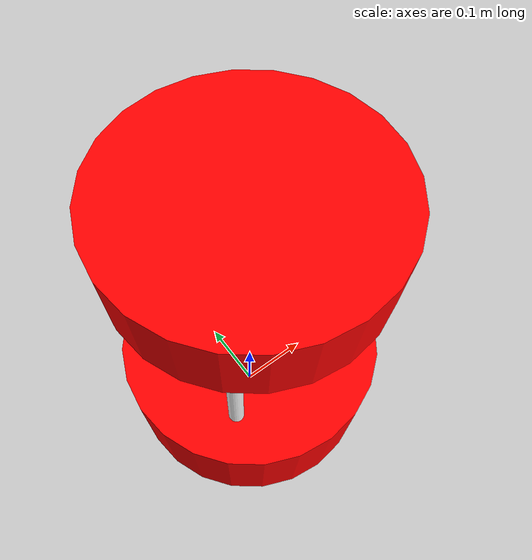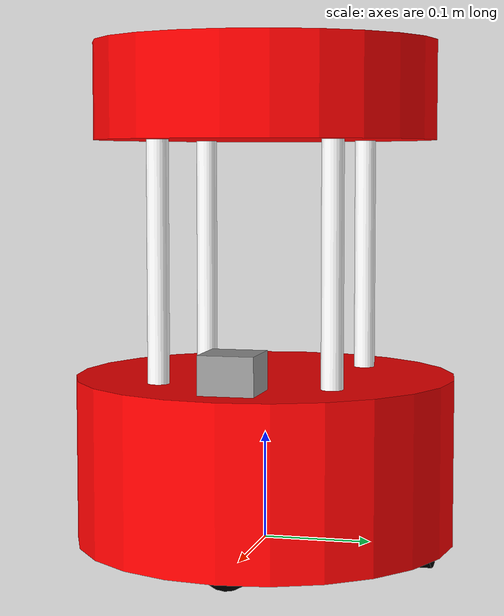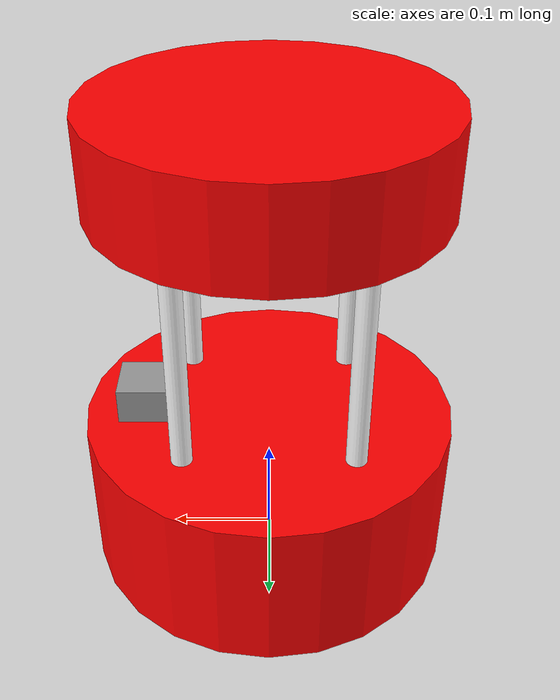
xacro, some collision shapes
<?xml version="1.0"?>
<robot xmlns:xacro="http://www.ros.org/wiki/xacro" name="barista_robot">

  <!-- Argument for conditionally including laser scanner -->
  <xacro:arg name="include_laser" default="true"/>

  <!-- Argument for robot name -->
  <xacro:arg name="robot_name" default="rick"/>
  <xacro:property name="robot_name" value="$(arg robot_name)"/>

  <!-- Include all macro files -->
  <xacro:include filename="$(find barista_robot_description)/xacro/drive_wheel.xacro"/>
  <xacro:include filename="$(find barista_robot_description)/xacro/caster_wheel.xacro"/>
  <xacro:include filename="$(find barista_robot_description)/xacro/standoff_rod.xacro"/>
  <xacro:include filename="$(find barista_robot_description)/xacro/cup_holder_tray.xacro"/>
  <xacro:include filename="$(find barista_robot_description)/xacro/laser_scanner.xacro"/>

  <!-- Material Definitions -->
  <material name="blue">
    <color rgba="0.0 0.0 0.8 1.0"/>
  </material>

  <material name="black">
    <color rgba="0 0 0 1"/>
  </material>

  <material name="red">
    <color rgba="1 0 0 1"/>
  </material>

  <material name="white">
    <color rgba="1 1 1 1"/>
  </material>

  <material name="green">
    <color rgba="0 1 0 1"/>
  </material>

  <!-- Conditional color based on robot name -->
  <xacro:if value="${robot_name == 'rick'}">
    <xacro:property name="robot_color" value="red"/>
    <xacro:property name="gazebo_color" value="Gazebo/Red"/>
    <xacro:property name="laser_color" value="Gazebo/Red"/>
  </xacro:if>
  <xacro:unless value="${robot_name == 'rick'}">
    <xacro:property name="robot_color" value="blue"/>
    <xacro:property name="gazebo_color" value="Gazebo/Blue"/>
    <xacro:property name="laser_color" value="Gazebo/Blue"/>
  </xacro:unless>

  <!-- Base Footprint Link -->
  <link name="base_footprint"/>

  <!-- Base Link -->
  <link name="base_link">
    <visual>
      <geometry>
        <cylinder radius="0.178" length="0.155"/>
      </geometry>
      <material name="${robot_color}"/>
    </visual>

    <collision>
      <geometry>
        <cylinder radius="0.178" length="0.155"/>
      </geometry>
    </collision>

    <inertial>
      <origin xyz="0 0 0" rpy="0 0 0"/>
      <mass value="10.0"/>
      <inertia ixx="0.099" ixy="0.0" ixz="0.0" iyy="0.099" iyz="0.0" izz="0.158"/>
    </inertial>
  </link>

  <!-- Base Link Joint -->
  <joint name="base_link_joint" type="fixed">
    <origin xyz="0 0 0.0775" rpy="0 0 0"/>
    <parent link="base_footprint"/>
    <child link="base_link"/>
  </joint>

  <!-- Gazebo Properties for Base Link -->
  <gazebo reference="base_link">
    <material>${gazebo_color}</material>
  </gazebo>

  <!-- Drive Wheels -->
  <xacro:drive_wheel prefix="left" parent_link="base_link">
    <origin xyz="0 0.15 -0.0623" rpy="0 0 0"/>
  </xacro:drive_wheel>

  <xacro:drive_wheel prefix="right" parent_link="base_link">
    <origin xyz="0 -0.15 -0.0623" rpy="0 0 0"/>
  </xacro:drive_wheel>

  <!-- Caster Wheels -->
  <xacro:caster_wheel prefix="front" parent_link="base_link">
    <origin xyz="0.14 0.0 -0.0673" rpy="0 0 0"/>
  </xacro:caster_wheel>

  <xacro:caster_wheel prefix="back" parent_link="base_link">
    <origin xyz="-0.14 0.0 -0.0673" rpy="0 0 0"/>
  </xacro:caster_wheel>

  <!-- Standoff Rods -->
  <xacro:standoff_rod prefix="front_left" parent_link="base_link">
    <origin xyz="0.08 0.08 0.0775" rpy="0 0 0"/>
  </xacro:standoff_rod>

  <xacro:standoff_rod prefix="front_right" parent_link="base_link">
    <origin xyz="0.08 -0.08 0.0775" rpy="0 0 0"/>
  </xacro:standoff_rod>

  <xacro:standoff_rod prefix="back_left" parent_link="base_link">
    <origin xyz="-0.08 0.08 0.0775" rpy="0 0 0"/>
  </xacro:standoff_rod>

  <xacro:standoff_rod prefix="back_right" parent_link="base_link">
    <origin xyz="-0.08 -0.08 0.0775" rpy="0 0 0"/>
  </xacro:standoff_rod>

  <!-- Cup Holder Tray -->
  <xacro:cup_holder_tray parent_link="base_link" robot_color="${robot_color}" gazebo_color="${gazebo_color}">
    <origin xyz="0 0 0.2975" rpy="0 0 0"/>
  </xacro:cup_holder_tray>

  <!-- Laser Scanner (conditional) -->
  <xacro:if value="$(arg include_laser)">
    <xacro:laser_scanner parent_link="base_link" robot_name="${robot_name}" laser_color="${laser_color}">
      <origin xyz="0.12 0.0 0.0775" rpy="0 0 0"/>
    </xacro:laser_scanner>
  </xacro:if>

  <!-- Gazebo Plugins -->

  <!-- Joint State Publisher -->
  <gazebo>
    <plugin name="barista_bot_joint_state" filename="libgazebo_ros_joint_state_publisher.so">
      <ros>
        <namespace>/${robot_name}</namespace>
        <remapping>~/out:=joint_states</remapping>
      </ros>
      <update_rate>30</update_rate>
      <joint_name>left_wheel_joint</joint_name>
      <joint_name>right_wheel_joint</joint_name>
      <joint_name>front_yaw_joint</joint_name>
      <joint_name>back_yaw_joint</joint_name>
      <joint_name>front_roll_joint</joint_name>
      <joint_name>back_roll_joint</joint_name>
      <joint_name>front_pitch_joint</joint_name>
      <joint_name>back_pitch_joint</joint_name>
    </plugin>
  </gazebo>

  <!-- Differential Drive Controller -->
  <gazebo>
    <plugin name="differential_drive_controller" filename="libgazebo_ros_diff_drive.so">
      <ros>
        <namespace>/${robot_name}</namespace>
        <remapping>/cmd_vel:=cmd_vel</remapping>
      </ros>

      <!-- wheels -->
      <left_joint>left_wheel_joint</left_joint>
      <right_joint>right_wheel_joint</right_joint>

      <!-- kinematics -->
      <wheel_separation>0.3</wheel_separation>
      <wheel_diameter>0.0704</wheel_diameter>

      <!-- limits -->
      <max_wheel_torque>10.0</max_wheel_torque>
      <max_wheel_acceleration>2.0</max_wheel_acceleration>

      <!-- output -->
      <publish_odom>true</publish_odom>
      <publish_odom_tf>true</publish_odom_tf>

      <odometry_frame>${robot_name}/odom</odometry_frame>
      <robot_base_frame>${robot_name}/base_footprint</robot_base_frame>
      <update_rate>30</update_rate>
    </plugin>
  </gazebo>

</robot>

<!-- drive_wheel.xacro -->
<robot xmlns:xacro="http://www.ros.org/wiki/xacro">

  <!-- Xacro properties for wheel dimensions -->
  <xacro:property name="wheel_radius" value="0.0352"/>
  <xacro:property name="wheel_width" value="0.0206"/>

  <!-- Drive Wheel Macro -->
  <xacro:macro name="drive_wheel" params="prefix parent_link *origin">

    <!-- Wheel Link -->
    <link name="${prefix}_wheel">
      <visual>
        <origin xyz="0 0 0" rpy="0 1.5707 1.5707"/>
        <geometry>
          <cylinder radius="${wheel_radius}" length="${wheel_width}"/>
        </geometry>
        <material name="black"/>
      </visual>

      <collision>
        <origin xyz="0 0 0" rpy="0 1.5707 1.5707"/>
        <geometry>
          <cylinder radius="${wheel_radius}" length="${wheel_width}"/>
        </geometry>
      </collision>

      <inertial>
        <origin xyz="0 0 0" rpy="0 1.5707 1.5707"/>
        <mass value="0.5"/>
        <inertia ixx="0.000173" ixy="0.0" ixz="0.0" iyy="0.000173" iyz="0.0" izz="0.00031"/>
      </inertial>
    </link>

    <!-- Wheel Joint -->
    <joint name="${prefix}_wheel_joint" type="continuous">
      <xacro:insert_block name="origin"/>
      <parent link="${parent_link}"/>
      <child link="${prefix}_wheel"/>
      <axis rpy="0 0 0" xyz="0 1 0"/>
      <limit effort="10000" velocity="1000"/>
      <joint_properties damping="1.0" friction="1.0"/>
    </joint>

    <!-- Gazebo Properties for Wheel -->
    <gazebo reference="${prefix}_wheel">
      <material>Gazebo/Black</material>
      <kp>1000000000000000000000000000.0</kp>
      <kd>1000000000000000000000000000.0</kd>
      <mu1>10.0</mu1>
      <mu2>10.0</mu2>
    </gazebo>

  </xacro:macro>

</robot>

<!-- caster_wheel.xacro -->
<robot xmlns:xacro="http://www.ros.org/wiki/xacro">

  <!-- Xacro properties for caster wheel dimensions -->
  <xacro:property name="caster_ball_radius" value="0.025"/>
  <xacro:property name="caster_cylinder_radius" value="0.005"/>
  <xacro:property name="caster_cylinder_length" value="0.001"/>

  <!-- Masses -->
  <xacro:property name="caster_cylinder_mass" value="0.001"/>
  <xacro:property name="caster_ball_mass" value="0.001"/>

  <!-- Caster Wheel Macro -->
  <xacro:macro name="caster_wheel" params="prefix parent_link *origin">

    <!-- Yaw Link -->
    <link name="${prefix}_yaw_link">
      <visual>
        <origin xyz="0 0 0" rpy="0 1.5707 1.5707"/>
        <geometry>
          <cylinder radius="${caster_cylinder_radius}" length="${caster_cylinder_length}"/>
        </geometry>
        <material name="blue"/>
      </visual>

      <collision>
        <origin xyz="0 0 0" rpy="0 1.5707 1.5707"/>
        <geometry>
          <cylinder radius="${caster_cylinder_radius}" length="${caster_cylinder_length}"/>
        </geometry>
      </collision>

      <inertial>
        <origin xyz="0 0 0" rpy="0 1.5707 1.5707"/>
        <mass value="${caster_cylinder_mass}"/>
        <!-- Cylinder inertia: Ixx = Iyy = (1/12)*m*(3*r^2 + h^2), Izz = (1/2)*m*r^2 -->
        <inertia ixx="${(1/12) * caster_cylinder_mass * (3 * caster_cylinder_radius * caster_cylinder_radius + caster_cylinder_length * caster_cylinder_length)}" ixy="0.0" ixz="0.0" iyy="${(1/12) * caster_cylinder_mass * (3 * caster_cylinder_radius * caster_cylinder_radius + caster_cylinder_length * caster_cylinder_length)}" iyz="0.0" izz="${(1/2) * caster_cylinder_mass * caster_cylinder_radius * caster_cylinder_radius}"/>
      </inertial>
    </link>

    <!-- Yaw Joint -->
    <joint name="${prefix}_yaw_joint" type="continuous">
      <xacro:insert_block name="origin"/>
      <parent link="${parent_link}"/>
      <child link="${prefix}_yaw_link"/>
      <axis xyz="0 0 1"/>
      <limit effort="1000.0" velocity="100.0"/>
      <dynamics damping="0.0" friction="0.1"/>
    </joint>

    <!-- Roll Link -->
    <link name="${prefix}_roll_link">
      <visual>
        <origin xyz="0 0 0" rpy="0 1.5707 1.5707"/>
        <geometry>
          <cylinder radius="${caster_cylinder_radius}" length="${caster_cylinder_length}"/>
        </geometry>
        <material name="red"/>
      </visual>

      <collision>
        <origin xyz="0 0 0" rpy="0 1.5707 1.5707"/>
        <geometry>
          <cylinder radius="${caster_cylinder_radius}" length="${caster_cylinder_length}"/>
        </geometry>
      </collision>

      <inertial>
        <origin xyz="0 0 0" rpy="0 1.5707 1.5707"/>
        <mass value="${caster_cylinder_mass}"/>
        <!-- Cylinder inertia: Ixx = Iyy = (1/12)*m*(3*r^2 + h^2), Izz = (1/2)*m*r^2 -->
        <inertia ixx="${(1/12) * caster_cylinder_mass * (3 * caster_cylinder_radius * caster_cylinder_radius + caster_cylinder_length * caster_cylinder_length)}" ixy="0.0" ixz="0.0" iyy="${(1/12) * caster_cylinder_mass * (3 * caster_cylinder_radius * caster_cylinder_radius + caster_cylinder_length * caster_cylinder_length)}" iyz="0.0" izz="${(1/2) * caster_cylinder_mass * caster_cylinder_radius * caster_cylinder_radius}"/>
      </inertial>
    </link>

    <!-- Roll Joint -->
    <joint name="${prefix}_roll_joint" type="continuous">
      <origin xyz="0 0 0" rpy="0 0 0"/>
      <parent link="${prefix}_yaw_link"/>
      <child link="${prefix}_roll_link"/>
      <axis xyz="1 0 0"/>
      <limit effort="1000.0" velocity="100.0"/>
      <dynamics damping="0.0" friction="0.1"/>
    </joint>

    <!-- Pitch Link (ball) -->
    <link name="${prefix}_pitch_link">
      <visual>
        <origin xyz="0 0 0" rpy="0 1.5707 1.5707"/>
        <geometry>
          <sphere radius="${caster_ball_radius}"/>
        </geometry>
        <material name="black"/>
      </visual>

      <collision>
        <origin xyz="0 0 0" rpy="0 1.5707 1.5707"/>
        <geometry>
          <sphere radius="${caster_ball_radius}"/>
        </geometry>
      </collision>

      <inertial>
        <origin xyz="0 0 0" rpy="0 1.5707 1.5707"/>
        <mass value="${caster_ball_mass}"/>
        <!-- Sphere inertia: I = (2/5)*m*r^2 -->
        <inertia ixx="${(2/5) * caster_ball_mass * caster_ball_radius * caster_ball_radius}" ixy="0.0" ixz="0.0" iyy="${(2/5) * caster_ball_mass * caster_ball_radius * caster_ball_radius}" iyz="0.0" izz="${(2/5) * caster_ball_mass * caster_ball_radius * caster_ball_radius}"/>
      </inertial>
    </link>

    <!-- Pitch Joint -->
    <joint name="${prefix}_pitch_joint" type="continuous">
      <origin xyz="0 0 0" rpy="0 0 0"/>
      <parent link="${prefix}_roll_link"/>
      <child link="${prefix}_pitch_link"/>
      <axis xyz="0 1 0"/>
      <limit effort="1000.0" velocity="100.0"/>
      <dynamics damping="0.0" friction="0.1"/>
    </joint>

    <!-- Gazebo Properties -->
    <gazebo reference="${prefix}_yaw_link">
      <material>Gazebo/Blue</material>
    </gazebo>

    <gazebo reference="${prefix}_roll_link">
      <material>Gazebo/Red</material>
    </gazebo>

    <gazebo reference="${prefix}_pitch_link">
      <material>Gazebo/Black</material>
      <kp>1000000000000000000000000000.0</kp>
      <kd>1000000000000000000000000000.0</kd>
      <mu1>0.5</mu1>
      <mu2>0.5</mu2>
    </gazebo>

  </xacro:macro>

</robot>

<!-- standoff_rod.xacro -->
<robot xmlns:xacro="http://www.ros.org/wiki/xacro">

  <!-- Xacro properties for standoff_rod dimensions -->
  <xacro:property name="rod_radius" value="0.01"/>
  <xacro:property name="rod_length" value="0.22"/>
  <xacro:property name="rod_mass" value="0.2"/>

  <!-- Standoff Rod Macro -->
  <xacro:macro name="standoff_rod" params="prefix parent_link *origin">

    <!-- Standoff Rod Link -->
    <link name="${prefix}_rod">
      <visual>
        <origin xyz="0 0 ${rod_length/2}" rpy="0 0 0"/>
        <geometry>
          <cylinder radius="${rod_radius}" length="${rod_length}"/>
        </geometry>
        <material name="white"/>
      </visual>

      <collision>
        <origin xyz="0 0 ${rod_length/2}" rpy="0 0 0"/>
        <geometry>
          <cylinder radius="${rod_radius}" length="${rod_length}"/>
        </geometry>
      </collision>

      <inertial>
        <origin xyz="0 0 ${rod_length/2}" rpy="0 0 0"/>
        <mass value="${rod_mass}"/>
        <!-- Cylinder inertia: Ixx = Iyy = (1/12)*m*(3*r^2 + h^2), Izz = (1/2)*m*r^2 -->
        <inertia ixx="${(1/12) * rod_mass * (3 * rod_radius * rod_radius + rod_length * rod_length)}" ixy="0.0" ixz="0.0" iyy="${(1/12) * rod_mass * (3 * rod_radius * rod_radius + rod_length * rod_length)}" iyz="0.0" izz="${(1/2) * rod_mass * rod_radius * rod_radius}"/>
      </inertial>
    </link>

    <!-- Standoff Rod Joint -->
    <joint name="${prefix}_rod_joint" type="fixed">
      <parent link="${parent_link}"/>
      <child link="${prefix}_rod"/>
      <xacro:insert_block name="origin"/>
    </joint>

    <!-- Gazebo Properties -->
    <gazebo reference="${prefix}_rod">
      <material>Gazebo/White</material>
    </gazebo>

  </xacro:macro>

</robot>

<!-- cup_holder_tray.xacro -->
<robot xmlns:xacro="http://www.ros.org/wiki/xacro">

  <!-- Xacro properties for cup holder tray dimensions -->
  <xacro:property name="tray_radius" value="0.16"/>
  <xacro:property name="tray_height" value="0.09"/>
  <xacro:property name="tray_mass" value="2.0"/>

  <!-- Cup Holder Tray Macro -->
  <xacro:macro name="cup_holder_tray" params="parent_link robot_color gazebo_color *origin">

    <!-- Cup Holder Tray Link -->
    <link name="cup_holder_tray">
      <visual>
        <origin xyz="0 0 ${tray_height/2}" rpy="0 0 0"/>
        <geometry>
          <cylinder radius="${tray_radius}" length="${tray_height}"/>
        </geometry>
        <material name="${robot_color}"/>
      </visual>

      <collision>
        <origin xyz="0 0 ${tray_height/2}" rpy="0 0 0"/>
        <geometry>
          <cylinder radius="${tray_radius}" length="${tray_height}"/>
        </geometry>
      </collision>

      <inertial>
        <origin xyz="0 0 ${tray_height/2}" rpy="0 0 0"/>
        <mass value="${tray_mass}"/>
        <!-- Cylinder inertia: Ixx = Iyy = (1/12)*m*(3*r^2 + h^2), Izz = (1/2)*m*r^2 -->
        <inertia ixx="${(1/12) * tray_mass * (3 * tray_radius * tray_radius + tray_height * tray_height)}" ixy="0.0" ixz="0.0" iyy="${(1/12) * tray_mass * (3 * tray_radius * tray_radius + tray_height * tray_height)}" iyz="0.0" izz="${(1/2) * tray_mass * tray_radius * tray_radius}"/>
      </inertial>
    </link>

    <!-- Tray Joint -->
    <joint name="tray_joint" type="fixed">
      <parent link="${parent_link}"/>
      <child link="cup_holder_tray"/>
      <xacro:insert_block name="origin"/>
    </joint>

    <!-- Gazebo Properties -->
    <gazebo reference="cup_holder_tray">
      <material>${gazebo_color}</material>
    </gazebo>

  </xacro:macro>

</robot>

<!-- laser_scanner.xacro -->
<robot xmlns:xacro="http://www.ros.org/wiki/xacro">

  <!-- Xacro properties for laser scanner -->
  <xacro:property name="laser_mass" value="0.16"/>
  <xacro:property name="laser_box_x" value="0.05"/>
  <xacro:property name="laser_box_y" value="0.05"/>
  <xacro:property name="laser_box_z" value="0.07"/>

  <!-- Laser Scanner Macro -->
  <xacro:macro name="laser_scanner" params="parent_link robot_name laser_color *origin">

    <!-- Laser Scanner Link -->
    <link name="laser_scanner">
      <visual>
        <origin xyz="0 0 0" rpy="0 0 0"/>
        <geometry>
          <mesh filename="package://barista_robot_description/meshes/hokuyo_urg_04lx.dae" scale="1.0 1.0 1.0"/>
        </geometry>
      </visual>

      <collision>
        <origin xyz="0 0 0" rpy="0 0 0"/>
        <geometry>
          <box size="${laser_box_x} ${laser_box_y} ${laser_box_z}"/>
        </geometry>
      </collision>

      <inertial>
        <origin xyz="0 0 0" rpy="0 0 0"/>
        <mass value="${laser_mass}"/>
        <!-- Box inertia: Ixx = (1/12)*m*(y^2 + z^2), Iyy = (1/12)*m*(x^2 + z^2), Izz = (1/12)*m*(x^2 + y^2) -->
        <inertia ixx="${(1/12) * laser_mass * (laser_box_y * laser_box_y + laser_box_z * laser_box_z)}" ixy="0.0" ixz="0.0" iyy="${(1/12) * laser_mass * (laser_box_x * laser_box_x + laser_box_z * laser_box_z)}" iyz="0.0" izz="${(1/12) * laser_mass * (laser_box_x * laser_box_x + laser_box_y * laser_box_y)}"/>
      </inertial>
    </link>

    <!-- Laser Scanner Joint -->
    <joint name="laser_scanner_joint" type="fixed">
      <xacro:insert_block name="origin"/>
      <parent link="${parent_link}"/>
      <child link="laser_scanner"/>
    </joint>

    <!-- Laser Scanner Frame Link -->
    <link name="laser_scanner_frame">
    </link>

    <!-- Laser Scanner Frame Joint -->
    <joint name="laser_scanner_frame_joint" type="fixed">
      <origin xyz="0 0 0.06" rpy="0 0 0"/>
      <parent link="laser_scanner"/>
      <child link="laser_scanner_frame"/>
    </joint>

    <!-- Gazebo Properties -->
    <gazebo reference="laser_scanner">
      <material>Gazebo/Gray</material>
    </gazebo>

    <!-- Laser Scan Sensor Plugin -->
    <gazebo reference="laser_scanner_frame">
      <sensor name="laser_ray" type="ray">
        <pose>0 0 0 0 0 0</pose>
        <ray>
          <scan>
            <horizontal>
              <samples>200</samples>
              <resolution>1.0</resolution>
              <min_angle>-1.570795</min_angle>
              <max_angle>1.570795</max_angle>
            </horizontal>
          </scan>
          <range>
            <min>0.1</min>
            <max>5.0</max>
          </range>
        </ray>
        <always_on>true</always_on>
        <visualize>true</visualize>
        <update_rate>100.0</update_rate>
        <material>${laser_color}</material>
        <plugin name="laser" filename="libgazebo_ros_ray_sensor.so">
          <ros>
            <namespace>/${robot_name}</namespace>
            <remapping>~/out:=scan</remapping>
          </ros>
          <output_type>sensor_msgs/LaserScan</output_type>
          <frame_name>${robot_name}/laser_scanner_frame</frame_name>
        </plugin>
      </sensor>
    </gazebo>

  </xacro:macro>

</robot>
